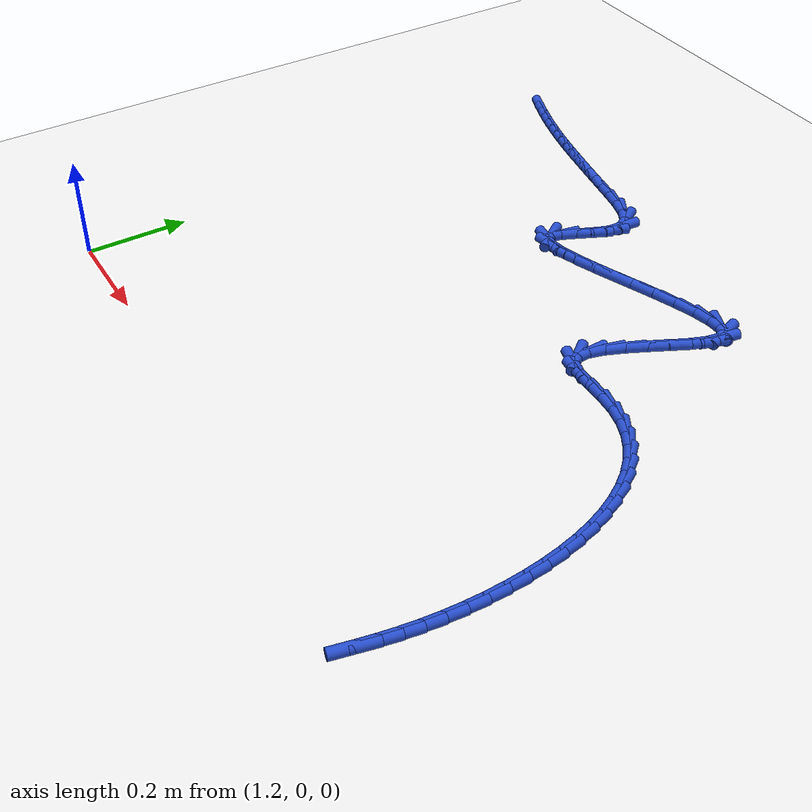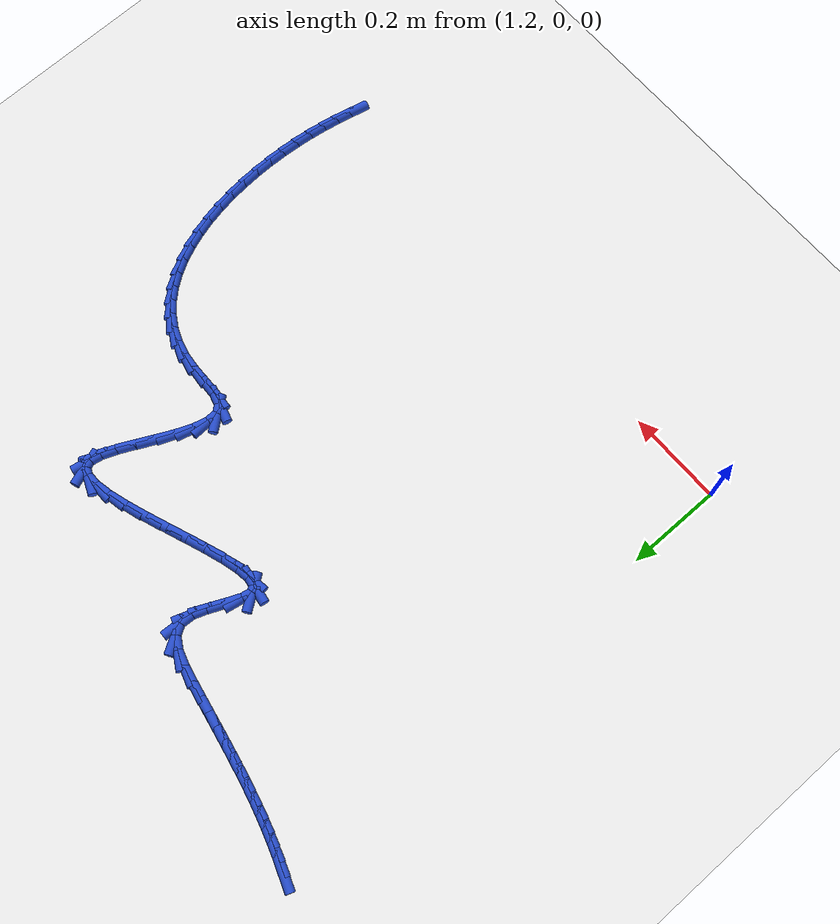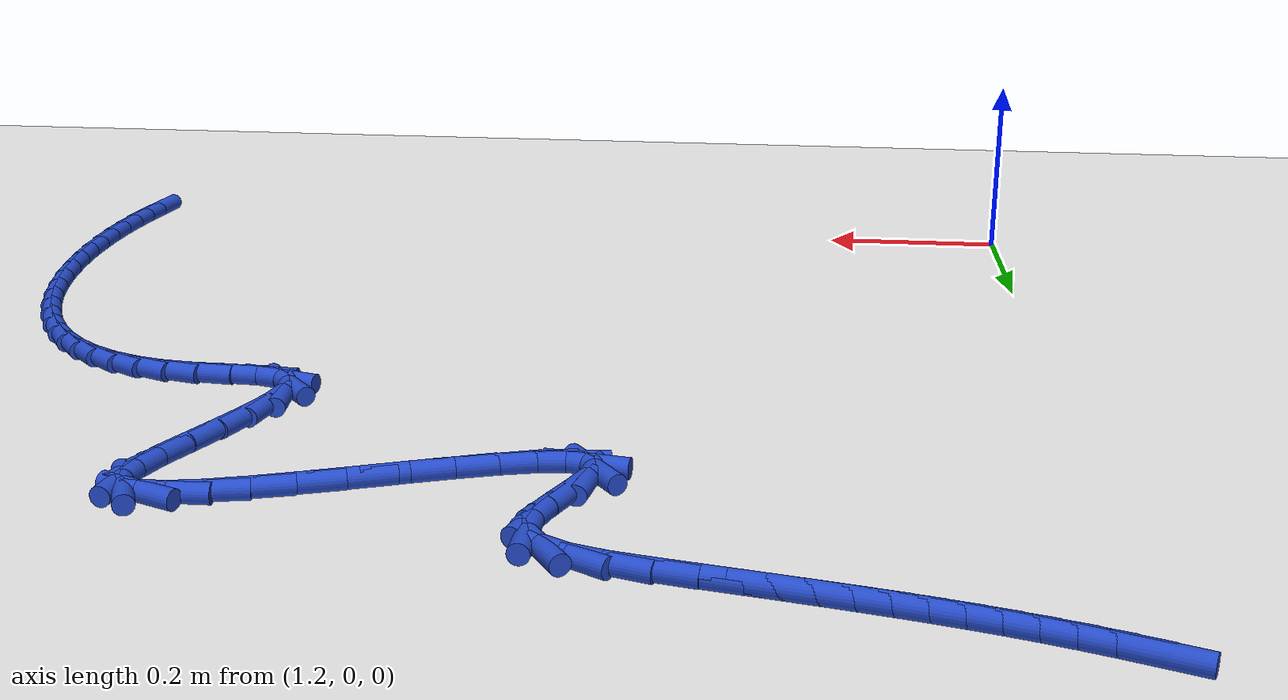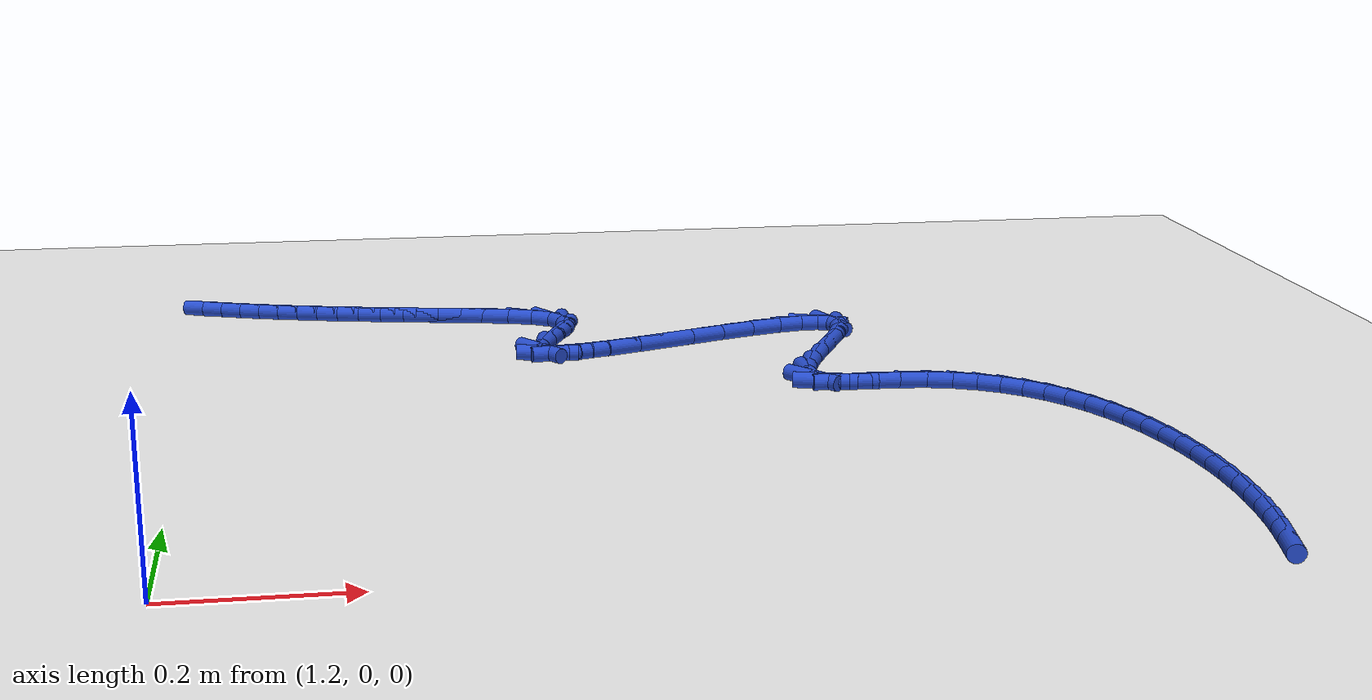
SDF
<sdf version="1.6">
 <world name="default">
  <model name="ground_plane">
   <static>1</static>
   <link name="link">
    <collision name="collision">
     <geometry><plane><normal>0 0 1</normal><size>100 100</size></plane></geometry>
     <surface><friction><ode><mu>100</mu><mu2>50</mu2></ode></friction></surface>
    </collision>
    <visual name="visual">
     <cast_shadows>0</cast_shadows>
     <geometry><plane><normal>0 0 1</normal><size>100 100</size></plane></geometry>
     <material>
      <script><uri>file://media/materials/scripts/gazebo.material</uri><name>Gazebo/WhiteGlow</name></script>
     </material>
    </visual>
   </link>
  </model>
  <model name="line">
   <link name="link_67">
    <pose>1.2075813204816834 1.0798621395228352 0.01 0 1.57 -0.36349178252804787</pose>
    <collision name="collision">
     <geometry><cylinder><radius>0.01</radius><length>0.08</length></cylinder></geometry>
    </collision>
    <visual name="visual">
     <material>
      <script><name>Gazebo/Blue</name><uri>file://media/materials/scripts/gazebo.material</uri></script>
     </material>
     <geometry><cylinder><radius>0.01</radius><length>0.08</length></cylinder></geometry>
    </visual>
   </link>
   <link name="link_68">
    <pose>1.2340818475749418 1.0697814818687765 0.01 0 1.57 -0.3384712861107182</pose>
    <collision name="collision">
     <geometry><cylinder><radius>0.01</radius><length>0.08</length></cylinder></geometry>
    </collision>
    <visual name="visual">
     <material>
      <script><name>Gazebo/Blue</name><uri>file://media/materials/scripts/gazebo.material</uri></script>
     </material>
     <geometry><cylinder><radius>0.01</radius><length>0.08</length></cylinder></geometry>
    </visual>
   </link>
   <link name="link_69">
    <pose>1.2601697648004149 1.0605980705155205 0.01 0 1.57 -0.3140016879058001</pose>
    <collision name="collision">
     <geometry><cylinder><radius>0.01</radius><length>0.08</length></cylinder></geometry>
    </collision>
    <visual name="visual">
     <material>
      <script><name>Gazebo/Blue</name><uri>file://media/materials/scripts/gazebo.material</uri></script>
     </material>
     <geometry><cylinder><radius>0.01</radius><length>0.08</length></cylinder></geometry>
    </visual>
   </link>
   <link name="link_70">
    <pose>1.2860438672985293 1.0521955723748042 0.01 0 1.57 -0.29075393672331684</pose>
    <collision name="collision">
     <geometry><cylinder><radius>0.01</radius><length>0.08</length></cylinder></geometry>
    </collision>
    <visual name="visual">
     <material>
      <script><name>Gazebo/Blue</name><uri>file://media/materials/scripts/gazebo.material</uri></script>
     </material>
     <geometry><cylinder><radius>0.01</radius><length>0.08</length></cylinder></geometry>
    </visual>
   </link>
   <link name="link_71">
    <pose>1.3119029502097113 1.0444576543583655 0.01 0 1.57 -0.26936138847672325</pose>
    <collision name="collision">
     <geometry><cylinder><radius>0.01</radius><length>0.08</length></cylinder></geometry>
    </collision>
    <visual name="visual">
     <material>
      <script><name>Gazebo/Blue</name><uri>file://media/materials/scripts/gazebo.material</uri></script>
     </material>
     <geometry><cylinder><radius>0.01</radius><length>0.08</length></cylinder></geometry>
    </visual>
   </link>
   <link name="link_72">
    <pose>1.3379458086743883 1.037267983377942 0.01 0 1.57 -0.25036365292439866</pose>
    <collision name="collision">
     <geometry><cylinder><radius>0.01</radius><length>0.08</length></cylinder></geometry>
    </collision>
    <visual name="visual">
     <material>
      <script><name>Gazebo/Blue</name><uri>file://media/materials/scripts/gazebo.material</uri></script>
     </material>
     <geometry><cylinder><radius>0.01</radius><length>0.08</length></cylinder></geometry>
    </visual>
   </link>
   <link name="link_73">
    <pose>1.3643712378329862 1.0305102263452706 0.01 0 1.57 -0.23416317445444537</pose>
    <collision name="collision">
     <geometry><cylinder><radius>0.01</radius><length>0.08</length></cylinder></geometry>
    </collision>
    <visual name="visual">
     <material>
      <script><name>Gazebo/Blue</name><uri>file://media/materials/scripts/gazebo.material</uri></script>
     </material>
     <geometry><cylinder><radius>0.01</radius><length>0.08</length></cylinder></geometry>
    </visual>
   </link>
   <link name="link_74">
    <pose>1.3913780328259313 1.0240680501720896 0.01 0 1.57 -0.22100145210969668</pose>
    <collision name="collision">
     <geometry><cylinder><radius>0.01</radius><length>0.08</length></cylinder></geometry>
    </collision>
    <visual name="visual">
     <material>
      <script><name>Gazebo/Blue</name><uri>file://media/materials/scripts/gazebo.material</uri></script>
     </material>
     <geometry><cylinder><radius>0.01</radius><length>0.08</length></cylinder></geometry>
    </visual>
   </link>
   <link name="link_75">
    <pose>1.4191649887936504 1.017825121770136 0.01 0 1.57 -0.21095671451756762</pose>
    <collision name="collision">
     <geometry><cylinder><radius>0.01</radius><length>0.08</length></cylinder></geometry>
    </collision>
    <visual name="visual">
     <material>
      <script><name>Gazebo/Blue</name><uri>file://media/materials/scripts/gazebo.material</uri></script>
     </material>
     <geometry><cylinder><radius>0.01</radius><length>0.08</length></cylinder></geometry>
    </visual>
   </link>
   <link name="link_76">
    <pose>1.4479309008765697 1.0116651080511476 0.01 0 1.57 -0.20396005924692726</pose>
    <collision name="collision">
     <geometry><cylinder><radius>0.01</radius><length>0.08</length></cylinder></geometry>
    </collision>
    <visual name="visual">
     <material>
      <script><name>Gazebo/Blue</name><uri>file://media/materials/scripts/gazebo.material</uri></script>
     </material>
     <geometry><cylinder><radius>0.01</radius><length>0.08</length></cylinder></geometry>
    </visual>
   </link>
   <link name="link_77">
    <pose>1.477874564215116 1.005471675926862 0.01 0 1.57 -0.19982404456002997</pose>
    <collision name="collision">
     <geometry><cylinder><radius>0.01</radius><length>0.08</length></cylinder></geometry>
    </collision>
    <visual name="visual">
     <material>
      <script><name>Gazebo/Blue</name><uri>file://media/materials/scripts/gazebo.material</uri></script>
     </material>
     <geometry><cylinder><radius>0.01</radius><length>0.08</length></cylinder></geometry>
    </visual>
   </link>
   <link name="link_78">
    <pose>1.5091947739497167 0.9991284923090165 0.01 0 1.57 -0.1982769223530124</pose>
    <collision name="collision">
     <geometry><cylinder><radius>0.01</radius><length>0.08</length></cylinder></geometry>
    </collision>
    <visual name="visual">
     <material>
      <script><name>Gazebo/Blue</name><uri>file://media/materials/scripts/gazebo.material</uri></script>
     </material>
     <geometry><cylinder><radius>0.01</radius><length>0.08</length></cylinder></geometry>
    </visual>
   </link>
   <link name="link_79">
    <pose>1.5420903252207965 0.9925192241093486 0.01 0 1.57 -0.19904461592035877</pose>
    <collision name="collision">
     <geometry><cylinder><radius>0.01</radius><length>0.08</length></cylinder></geometry>
    </collision>
    <visual name="visual">
     <material>
      <script><name>Gazebo/Blue</name><uri>file://media/materials/scripts/gazebo.material</uri></script>
     </material>
     <geometry><cylinder><radius>0.01</radius><length>0.08</length></cylinder></geometry>
    </visual>
   </link>
   <link name="link_80">
    <pose>1.5767569604038825 0.9855264234895668 0.01 0 1.57 -0.2200409473014814</pose>
    <collision name="collision">
     <geometry><cylinder><radius>0.01</radius><length>0.08</length></cylinder></geometry>
    </collision>
    <visual name="visual">
     <material>
      <script><name>Gazebo/Blue</name><uri>file://media/materials/scripts/gazebo.material</uri></script>
     </material>
     <geometry><cylinder><radius>0.01</radius><length>0.08</length></cylinder></geometry>
    </visual>
   </link>
   <link name="link_81">
    <pose>1.6122020385916365 0.9775986916380697 0.01 0 1.57 -0.31491738829142585</pose>
    <collision name="collision">
     <geometry><cylinder><radius>0.01</radius><length>0.08</length></cylinder></geometry>
    </collision>
    <visual name="visual">
     <material>
      <script><name>Gazebo/Blue</name><uri>file://media/materials/scripts/gazebo.material</uri></script>
     </material>
     <geometry><cylinder><radius>0.01</radius><length>0.08</length></cylinder></geometry>
    </visual>
   </link>
   <link name="link_82">
    <pose>1.644447501083149 0.9670944722360495 0.01 0 1.57 -0.5442021628274567</pose>
    <collision name="collision">
     <geometry><cylinder><radius>0.01</radius><length>0.08</length></cylinder></geometry>
    </collision>
    <visual name="visual">
     <material>
      <script><name>Gazebo/Blue</name><uri>file://media/materials/scripts/gazebo.material</uri></script>
     </material>
     <geometry><cylinder><radius>0.01</radius><length>0.08</length></cylinder></geometry>
    </visual>
   </link>
   <link name="link_83">
    <pose>1.6690539318658928 0.952203739366291 0.01 0 1.57 -1.034669283786752</pose>
    <collision name="collision">
     <geometry><cylinder><radius>0.01</radius><length>0.08</length></cylinder></geometry>
    </collision>
    <visual name="visual">
     <material>
      <script><name>Gazebo/Blue</name><uri>file://media/materials/scripts/gazebo.material</uri></script>
     </material>
     <geometry><cylinder><radius>0.01</radius><length>0.08</length></cylinder></geometry>
    </visual>
   </link>
   <link name="link_84">
    <pose>1.6815831264479086 0.931117110350725 0.01 0 1.57 1.5085522697786993</pose>
    <collision name="collision">
     <geometry><cylinder><radius>0.01</radius><length>0.08</length></cylinder></geometry>
    </collision>
    <visual name="visual">
     <material>
      <script><name>Gazebo/Blue</name><uri>file://media/materials/scripts/gazebo.material</uri></script>
     </material>
     <geometry><cylinder><radius>0.01</radius><length>0.08</length></cylinder></geometry>
    </visual>
   </link>
   <link name="link_85">
    <pose>1.6798443555793718 0.9032184666600894 0.01 0 1.57 1.2282274467618073</pose>
    <collision name="collision">
     <geometry><cylinder><radius>0.01</radius><length>0.08</length></cylinder></geometry>
    </collision>
    <visual name="visual">
     <material>
      <script><name>Gazebo/Blue</name><uri>file://media/materials/scripts/gazebo.material</uri></script>
     </material>
     <geometry><cylinder><radius>0.01</radius><length>0.08</length></cylinder></geometry>
    </visual>
   </link>
   <link name="link_86">
    <pose>1.6685535266009224 0.8715586675710336 0.01 0 1.57 1.1334893583099654</pose>
    <collision name="collision">
     <geometry><cylinder><radius>0.01</radius><length>0.08</length></cylinder></geometry>
    </collision>
    <visual name="visual">
     <material>
      <script><name>Gazebo/Blue</name><uri>file://media/materials/scripts/gazebo.material</uri></script>
     </material>
     <geometry><cylinder><radius>0.01</radius><length>0.08</length></cylinder></geometry>
    </visual>
   </link>
   <link name="link_87">
    <pose>1.6537488953925668 0.8398906540003813 0.01 0 1.57 1.1564715526220575</pose>
    <collision name="collision">
     <geometry><cylinder><radius>0.01</radius><length>0.08</length></cylinder></geometry>
    </collision>
    <visual name="visual">
     <material>
      <script><name>Gazebo/Blue</name><uri>file://media/materials/scripts/gazebo.material</uri></script>
     </material>
     <geometry><cylinder><radius>0.01</radius><length>0.08</length></cylinder></geometry>
    </visual>
   </link>
   <link name="link_88">
    <pose>1.6414687178343104 0.811967366864958 0.01 0 1.57 1.38871821715873</pose>
    <collision name="collision">
     <geometry><cylinder><radius>0.01</radius><length>0.08</length></cylinder></geometry>
    </collision>
    <visual name="visual">
     <material>
      <script><name>Gazebo/Blue</name><uri>file://media/materials/scripts/gazebo.material</uri></script>
     </material>
     <geometry><cylinder><radius>0.01</radius><length>0.08</length></cylinder></geometry>
    </visual>
   </link>
   <link name="link_89">
    <pose>1.6377019909258206 0.7915090633810091 0.01 0 1.57 -0.9598681090177598</pose>
    <collision name="collision">
     <geometry><cylinder><radius>0.01</radius><length>0.08</length></cylinder></geometry>
    </collision>
    <visual name="visual">
     <material>
      <script><name>Gazebo/Blue</name><uri>file://media/materials/scripts/gazebo.material</uri></script>
     </material>
     <geometry><cylinder><radius>0.01</radius><length>0.08</length></cylinder></geometry>
    </visual>
   </link>
   <link name="link_90">
    <pose>1.6455416175694253 0.7803144168458146 0.01 0 1.57 -0.1691462319148357</pose>
    <collision name="collision">
     <geometry><cylinder><radius>0.01</radius><length>0.08</length></cylinder></geometry>
    </collision>
    <visual name="visual">
     <material>
      <script><name>Gazebo/Blue</name><uri>file://media/materials/scripts/gazebo.material</uri></script>
     </material>
     <geometry><cylinder><radius>0.01</radius><length>0.08</length></cylinder></geometry>
    </visual>
   </link>
   <link name="link_91">
    <pose>1.6636254025529034 0.7772261037531665 0.01 0 1.57 0.13492208402925984</pose>
    <collision name="collision">
     <geometry><cylinder><radius>0.01</radius><length>0.08</length></cylinder></geometry>
    </collision>
    <visual name="visual">
     <material>
      <script><name>Gazebo/Blue</name><uri>file://media/materials/scripts/gazebo.material</uri></script>
     </material>
     <geometry><cylinder><radius>0.01</radius><length>0.08</length></cylinder></geometry>
    </visual>
   </link>
   <link name="link_92">
    <pose>1.6902118453217245 0.7808351281643805 0.01 0 1.57 0.26073320397918986</pose>
    <collision name="collision">
     <geometry><cylinder><radius>0.01</radius><length>0.08</length></cylinder></geometry>
    </collision>
    <visual name="visual">
     <material>
      <script><name>Gazebo/Blue</name><uri>file://media/materials/scripts/gazebo.material</uri></script>
     </material>
     <geometry><cylinder><radius>0.01</radius><length>0.08</length></cylinder></geometry>
    </visual>
   </link>
   <link name="link_93">
    <pose>1.7235594453213592 0.7897324941407727 0.01 0 1.57 0.3214602642262891</pose>
    <collision name="collision">
     <geometry><cylinder><radius>0.01</radius><length>0.08</length></cylinder></geometry>
    </collision>
    <visual name="visual">
     <material>
      <script><name>Gazebo/Blue</name><uri>file://media/materials/scripts/gazebo.material</uri></script>
     </material>
     <geometry><cylinder><radius>0.01</radius><length>0.08</length></cylinder></geometry>
    </visual>
   </link>
   <link name="link_94">
    <pose>1.7619267019972795 0.8025092057436596 0.01 0 1.57 0.35095949890989875</pose>
    <collision name="collision">
     <geometry><cylinder><radius>0.01</radius><length>0.08</length></cylinder></geometry>
    </collision>
    <visual name="visual">
     <material>
      <script><name>Gazebo/Blue</name><uri>file://media/materials/scripts/gazebo.material</uri></script>
     </material>
     <geometry><cylinder><radius>0.01</radius><length>0.08</length></cylinder></geometry>
    </visual>
   </link>
   <link name="link_95">
    <pose>1.8035721147949546 0.8177562670343568 0.01 0 1.57 0.36110625869679286</pose>
    <collision name="collision">
     <geometry><cylinder><radius>0.01</radius><length>0.08</length></cylinder></geometry>
    </collision>
    <visual name="visual">
     <material>
      <script><name>Gazebo/Blue</name><uri>file://media/materials/scripts/gazebo.material</uri></script>
     </material>
     <geometry><cylinder><radius>0.01</radius><length>0.08</length></cylinder></geometry>
    </visual>
   </link>
   <link name="link_96">
    <pose>1.8467541831598548 0.8340646820741799 0.01 0 1.57 0.3555909848033311</pose>
    <collision name="collision">
     <geometry><cylinder><radius>0.01</radius><length>0.08</length></cylinder></geometry>
    </collision>
    <visual name="visual">
     <material>
      <script><name>Gazebo/Blue</name><uri>file://media/materials/scripts/gazebo.material</uri></script>
     </material>
     <geometry><cylinder><radius>0.01</radius><length>0.08</length></cylinder></geometry>
    </visual>
   </link>
   <link name="link_97">
    <pose>1.8897314065374509 0.8500254549244455 0.01 0 1.57 0.3332690803337346</pose>
    <collision name="collision">
     <geometry><cylinder><radius>0.01</radius><length>0.08</length></cylinder></geometry>
    </collision>
    <visual name="visual">
     <material>
      <script><name>Gazebo/Blue</name><uri>file://media/materials/scripts/gazebo.material</uri></script>
     </material>
     <geometry><cylinder><radius>0.01</radius><length>0.08</length></cylinder></geometry>
    </visual>
   </link>
   <link name="link_98">
    <pose>1.9307622843732142 0.8642295896464692 0.01 0 1.57 0.2874127737884673</pose>
    <collision name="collision">
     <geometry><cylinder><radius>0.01</radius><length>0.08</length></cylinder></geometry>
    </collision>
    <visual name="visual">
     <material>
      <script><name>Gazebo/Blue</name><uri>file://media/materials/scripts/gazebo.material</uri></script>
     </material>
     <geometry><cylinder><radius>0.01</radius><length>0.08</length></cylinder></geometry>
    </visual>
   </link>
   <link name="link_99">
    <pose>1.968105316112615 0.8752680903015675 0.01 0 1.57 0.19983886372050583</pose>
    <collision name="collision">
     <geometry><cylinder><radius>0.01</radius><length>0.08</length></cylinder></geometry>
    </collision>
    <visual name="visual">
     <material>
      <script><name>Gazebo/Blue</name><uri>file://media/materials/scripts/gazebo.material</uri></script>
     </material>
     <geometry><cylinder><radius>0.01</radius><length>0.08</length></cylinder></geometry>
    </visual>
   </link>
   <link name="link_100">
    <pose>2.0000190012011236 0.8817319609510561 0.01 0 1.57 0.019407006347672295</pose>
    <collision name="collision">
     <geometry><cylinder><radius>0.01</radius><length>0.08</length></cylinder></geometry>
    </collision>
    <visual name="visual">
     <material>
      <script><name>Gazebo/Blue</name><uri>file://media/materials/scripts/gazebo.material</uri></script>
     </material>
     <geometry><cylinder><radius>0.01</radius><length>0.08</length></cylinder></geometry>
    </visual>
   </link>
   <link name="link_101">
    <pose>2.0247618390842104 0.882212205656251 0.01 0 1.57 -0.41169644026972385</pose>
    <collision name="collision">
     <geometry><cylinder><radius>0.01</radius><length>0.08</length></cylinder></geometry>
    </collision>
    <visual name="visual">
     <material>
      <script><name>Gazebo/Blue</name><uri>file://media/materials/scripts/gazebo.material</uri></script>
     </material>
     <geometry><cylinder><radius>0.01</radius><length>0.08</length></cylinder></geometry>
    </visual>
   </link>
   <link name="link_102">
    <pose>2.040592329207346 0.8752998284784683 0.01 0 1.57 -1.2419043116179147</pose>
    <collision name="collision">
     <geometry><cylinder><radius>0.01</radius><length>0.08</length></cylinder></geometry>
    </collision>
    <visual name="visual">
     <material>
      <script><name>Gazebo/Blue</name><uri>file://media/materials/scripts/gazebo.material</uri></script>
     </material>
     <geometry><cylinder><radius>0.01</radius><length>0.08</length></cylinder></geometry>
    </visual>
   </link>
   <link name="link_103">
    <pose>2.045915755738176 0.8597017514219313 0.01 0 1.57 1.3853832356556264</pose>
    <collision name="collision">
     <geometry><cylinder><radius>0.01</radius><length>0.08</length></cylinder></geometry>
    </collision>
    <visual name="visual">
     <material>
      <script><name>Gazebo/Blue</name><uri>file://media/materials/scripts/gazebo.material</uri></script>
     </material>
     <geometry><cylinder><radius>0.01</radius><length>0.08</length></cylinder></geometry>
    </visual>
   </link>
   <link name="link_104">
    <pose>2.041462822659471 0.835961312960991 0.01 0 1.57 1.199228471949957</pose>
    <collision name="collision">
     <geometry><cylinder><radius>0.01</radius><length>0.08</length></cylinder></geometry>
    </collision>
    <visual name="visual">
     <material>
      <script><name>Gazebo/Blue</name><uri>file://media/materials/scripts/gazebo.material</uri></script>
     </material>
     <geometry><cylinder><radius>0.01</radius><length>0.08</length></cylinder></geometry>
    </visual>
   </link>
   <link name="link_105">
    <pose>2.0298227531693365 0.8060895501227056 0.01 0 1.57 1.1259236814239564</pose>
    <collision name="collision">
     <geometry><cylinder><radius>0.01</radius><length>0.08</length></cylinder></geometry>
    </collision>
    <visual name="visual">
     <material>
      <script><name>Gazebo/Blue</name><uri>file://media/materials/scripts/gazebo.material</uri></script>
     </material>
     <geometry><cylinder><radius>0.01</radius><length>0.08</length></cylinder></geometry>
    </visual>
   </link>
   <link name="link_106">
    <pose>2.0136367022446717 0.7721385111843486 0.01 0 1.57 1.1048889342531996</pose>
    <collision name="collision">
     <geometry><cylinder><radius>0.01</radius><length>0.08</length></cylinder></geometry>
    </collision>
    <visual name="visual">
     <material>
      <script><name>Gazebo/Blue</name><uri>file://media/materials/scripts/gazebo.material</uri></script>
     </material>
     <geometry><cylinder><radius>0.01</radius><length>0.08</length></cylinder></geometry>
    </visual>
   </link>
   <link name="link_107">
    <pose>1.9955458248623743 0.7361602444231947 0.01 0 1.57 1.1210883087487669</pose>
    <collision name="collision">
     <geometry><cylinder><radius>0.01</radius><length>0.08</length></cylinder></geometry>
    </collision>
    <visual name="visual">
     <material>
      <script><name>Gazebo/Blue</name><uri>file://media/materials/scripts/gazebo.material</uri></script>
     </material>
     <geometry><cylinder><radius>0.01</radius><length>0.08</length></cylinder></geometry>
    </visual>
   </link>
   <link name="link_108">
    <pose>1.9781912759993452 0.7002067981165184 0.01 0 1.57 1.1794856478137319</pose>
    <collision name="collision">
     <geometry><cylinder><radius>0.01</radius><length>0.08</length></cylinder></geometry>
    </collision>
    <visual name="visual">
     <material>
      <script><name>Gazebo/Blue</name><uri>file://media/materials/scripts/gazebo.material</uri></script>
     </material>
     <geometry><cylinder><radius>0.01</radius><length>0.08</length></cylinder></geometry>
    </visual>
   </link>
   <link name="link_109">
    <pose>1.9642142106324816 0.6663302205415935 0.01 0 1.57 1.3093869856145985</pose>
    <collision name="collision">
     <geometry><cylinder><radius>0.01</radius><length>0.08</length></cylinder></geometry>
    </collision>
    <visual name="visual">
     <material>
      <script><name>Gazebo/Blue</name><uri>file://media/materials/scripts/gazebo.material</uri></script>
     </material>
     <geometry><cylinder><radius>0.01</radius><length>0.08</length></cylinder></geometry>
    </visual>
   </link>
   <link name="link_110">
    <pose>1.9562557837386827 0.6365825599756952 0.01 0 1.57 -1.5410441876795093</pose>
    <collision name="collision">
     <geometry><cylinder><radius>0.01</radius><length>0.08</length></cylinder></geometry>
    </collision>
    <visual name="visual">
     <material>
      <script><name>Gazebo/Blue</name><uri>file://media/materials/scripts/gazebo.material</uri></script>
     </material>
     <geometry><cylinder><radius>0.01</radius><length>0.08</length></cylinder></geometry>
    </visual>
   </link>
   <link name="link_111">
    <pose>1.9569571502948477 0.613015864696098 0.01 0 1.57 -0.9076381895655725</pose>
    <collision name="collision">
     <geometry><cylinder><radius>0.01</radius><length>0.08</length></cylinder></geometry>
    </collision>
    <visual name="visual">
     <material>
      <script><name>Gazebo/Blue</name><uri>file://media/materials/scripts/gazebo.material</uri></script>
     </material>
     <geometry><cylinder><radius>0.01</radius><length>0.08</length></cylinder></geometry>
    </visual>
   </link>
   <link name="link_112">
    <pose>1.9689450009469518 0.5976699970574995 0.01 0 1.57 -0.282527602241062</pose>
    <collision name="collision">
     <geometry><cylinder><radius>0.01</radius><length>0.08</length></cylinder></geometry>
    </collision>
    <visual name="visual">
     <material>
      <script><name>Gazebo/Blue</name><uri>file://media/materials/scripts/gazebo.material</uri></script>
     </material>
     <geometry><cylinder><radius>0.01</radius><length>0.08</length></cylinder></geometry>
    </visual>
   </link>
   <link name="link_113">
    <pose>1.9926975773494628 0.5907747921683525 0.01 0 1.57 -0.06091799804714003</pose>
    <collision name="collision">
     <geometry><cylinder><radius>0.01</radius><length>0.08</length></cylinder></geometry>
    </collision>
    <visual name="visual">
     <material>
      <script><name>Gazebo/Blue</name><uri>file://media/materials/scripts/gazebo.material</uri></script>
     </material>
     <geometry><cylinder><radius>0.01</radius><length>0.08</length></cylinder></geometry>
    </visual>
   </link>
   <link name="link_114">
    <pose>2.0242870349709086 0.5888480416688344 0.01 0 1.57 -0.025619167527136513</pose>
    <collision name="collision">
     <geometry><cylinder><radius>0.01</radius><length>0.08</length></cylinder></geometry>
    </collision>
    <visual name="visual">
     <material>
      <script><name>Gazebo/Blue</name><uri>file://media/materials/scripts/gazebo.material</uri></script>
     </material>
     <geometry><cylinder><radius>0.01</radius><length>0.08</length></cylinder></geometry>
    </visual>
   </link>
   <link name="link_115">
    <pose>2.0592451153234217 0.587952248761187 0.01 0 1.57 -0.10722562103384078</pose>
    <collision name="collision">
     <geometry><cylinder><radius>0.01</radius><length>0.08</length></cylinder></geometry>
    </collision>
    <visual name="visual">
     <material>
      <script><name>Gazebo/Blue</name><uri>file://media/materials/scripts/gazebo.material</uri></script>
     </material>
     <geometry><cylinder><radius>0.01</radius><length>0.08</length></cylinder></geometry>
    </visual>
   </link>
   <link name="link_116">
    <pose>2.09325546248093 0.5842914275054385 0.01 0 1.57 -0.2503568236305328</pose>
    <collision name="collision">
     <geometry><cylinder><radius>0.01</radius><length>0.08</length></cylinder></geometry>
    </collision>
    <visual name="visual">
     <material>
      <script><name>Gazebo/Blue</name><uri>file://media/materials/scripts/gazebo.material</uri></script>
     </material>
     <geometry><cylinder><radius>0.01</radius><length>0.08</length></cylinder></geometry>
    </visual>
   </link>
   <link name="link_117">
    <pose>2.1244196059257736 0.5763220690372763 0.01 0 1.57 -0.4007827699854262</pose>
    <collision name="collision">
     <geometry><cylinder><radius>0.01</radius><length>0.08</length></cylinder></geometry>
    </collision>
    <visual name="visual">
     <material>
      <script><name>Gazebo/Blue</name><uri>file://media/materials/scripts/gazebo.material</uri></script>
     </material>
     <geometry><cylinder><radius>0.01</radius><length>0.08</length></cylinder></geometry>
    </visual>
   </link>
   <link name="link_118">
    <pose>2.1527774176163197 0.5643064043247359 0.01 0 1.57 -0.5507174822655772</pose>
    <collision name="collision">
     <geometry><cylinder><radius>0.01</radius><length>0.08</length></cylinder></geometry>
    </collision>
    <visual name="visual">
     <material>
      <script><name>Gazebo/Blue</name><uri>file://media/materials/scripts/gazebo.material</uri></script>
     </material>
     <geometry><cylinder><radius>0.01</radius><length>0.08</length></cylinder></geometry>
    </visual>
   </link>
   <link name="link_119">
    <pose>2.1784232918802373 0.548557456812011 0.01 0 1.57 -0.6941980798483157</pose>
    <collision name="collision">
     <geometry><cylinder><radius>0.01</radius><length>0.08</length></cylinder></geometry>
    </collision>
    <visual name="visual">
     <material>
      <script><name>Gazebo/Blue</name><uri>file://media/materials/scripts/gazebo.material</uri></script>
     </material>
     <geometry><cylinder><radius>0.01</radius><length>0.08</length></cylinder></geometry>
    </visual>
   </link>
   <link name="link_120">
    <pose>2.2014516230451933 0.5293882499432951 0.01 0 1.57 -0.82677689427212</pose>
    <collision name="collision">
     <geometry><cylinder><radius>0.01</radius><length>0.08</length></cylinder></geometry>
    </collision>
    <visual name="visual">
     <material>
      <script><name>Gazebo/Blue</name><uri>file://media/materials/scripts/gazebo.material</uri></script>
     </material>
     <geometry><cylinder><radius>0.01</radius><length>0.08</length></cylinder></geometry>
    </visual>
   </link>
   <link name="link_121">
    <pose>2.2219568054388583 0.507111807162783 0.01 0 1.57 -0.9461022561206545</pose>
    <collision name="collision">
     <geometry><cylinder><radius>0.01</radius><length>0.08</length></cylinder></geometry>
    </collision>
    <visual name="visual">
     <material>
      <script><name>Gazebo/Blue</name><uri>file://media/materials/scripts/gazebo.material</uri></script>
     </material>
     <geometry><cylinder><radius>0.01</radius><length>0.08</length></cylinder></geometry>
    </visual>
   </link>
   <link name="link_122">
    <pose>2.2400332333889006 0.4820411519146677 0.01 0 1.57 -1.0517006452103101</pose>
    <collision name="collision">
     <geometry><cylinder><radius>0.01</radius><length>0.08</length></cylinder></geometry>
    </collision>
    <visual name="visual">
     <material>
      <script><name>Gazebo/Blue</name><uri>file://media/materials/scripts/gazebo.material</uri></script>
     </material>
     <geometry><cylinder><radius>0.01</radius><length>0.08</length></cylinder></geometry>
    </visual>
   </link>
   <link name="link_123">
    <pose>2.2557753012229873 0.45448930764314416 0.01 0 1.57 -1.1443638660648083</pose>
    <collision name="collision">
     <geometry><cylinder><radius>0.01</radius><length>0.08</length></cylinder></geometry>
    </collision>
    <visual name="visual">
     <material>
      <script><name>Gazebo/Blue</name><uri>file://media/materials/scripts/gazebo.material</uri></script>
     </material>
     <geometry><cylinder><radius>0.01</radius><length>0.08</length></cylinder></geometry>
    </visual>
   </link>
   <link name="link_124">
    <pose>2.269277403268788 0.42476929779240585 0.01 0 1.57 -1.2255358414365916</pose>
    <collision name="collision">
     <geometry><cylinder><radius>0.01</radius><length>0.08</length></cylinder></geometry>
    </collision>
    <visual name="visual">
     <material>
      <script><name>Gazebo/Blue</name><uri>file://media/materials/scripts/gazebo.material</uri></script>
     </material>
     <geometry><cylinder><radius>0.01</radius><length>0.08</length></cylinder></geometry>
    </visual>
   </link>
   <link name="link_125">
    <pose>2.2806339338539714 0.393194145806647 0.01 0 1.57 -1.2968773456381373</pose>
    <collision name="collision">
     <geometry><cylinder><radius>0.01</radius><length>0.08</length></cylinder></geometry>
    </collision>
    <visual name="visual">
     <material>
      <script><name>Gazebo/Blue</name><uri>file://media/materials/scripts/gazebo.material</uri></script>
     </material>
     <geometry><cylinder><radius>0.01</radius><length>0.08</length></cylinder></geometry>
    </visual>
   </link>
   <link name="link_126">
    <pose>2.2899392873062046 0.360076875130061 0.01 0 1.57 -1.36001937921772</pose>
    <collision name="collision">
     <geometry><cylinder><radius>0.01</radius><length>0.08</length></cylinder></geometry>
    </collision>
    <visual name="visual">
     <material>
      <script><name>Gazebo/Blue</name><uri>file://media/materials/scripts/gazebo.material</uri></script>
     </material>
     <geometry><cylinder><radius>0.01</radius><length>0.08</length></cylinder></geometry>
    </visual>
   </link>
   <link name="link_127">
    <pose>2.297287857953159 0.32573050920684277 0.01 0 1.57 -1.4164522412377092</pose>
    <collision name="collision">
     <geometry><cylinder><radius>0.01</radius><length>0.08</length></cylinder></geometry>
    </collision>
    <visual name="visual">
     <material>
      <script><name>Gazebo/Blue</name><uri>file://media/materials/scripts/gazebo.material</uri></script>
     </material>
     <geometry><cylinder><radius>0.01</radius><length>0.08</length></cylinder></geometry>
    </visual>
   </link>
   <link name="link_128">
    <pose>2.3027740401225003 0.29046807148118586 0.01 0 1.57 -1.4674949860459994</pose>
    <collision name="collision">
     <geometry><cylinder><radius>0.01</radius><length>0.08</length></cylinder></geometry>
    </collision>
    <visual name="visual">
     <material>
      <script><name>Gazebo/Blue</name><uri>file://media/materials/scripts/gazebo.material</uri></script>
     </material>
     <geometry><cylinder><radius>0.01</radius><length>0.08</length></cylinder></geometry>
    </visual>
   </link>
   <link name="link_129">
    <pose>2.3064922281418982 0.2546025853972842 0.01 0 1.57 -1.5143066558950309</pose>
    <collision name="collision">
     <geometry><cylinder><radius>0.01</radius><length>0.08</length></cylinder></geometry>
    </collision>
    <visual name="visual">
     <material>
      <script><name>Gazebo/Blue</name><uri>file://media/materials/scripts/gazebo.material</uri></script>
     </material>
     <geometry><cylinder><radius>0.01</radius><length>0.08</length></cylinder></geometry>
    </visual>
   </link>
   <link name="link_130">
    <pose>2.3085368163390214 0.2184470743993318 0.01 0 1.57 -1.5579171512560586</pose>
    <collision name="collision">
     <geometry><cylinder><radius>0.01</radius><length>0.08</length></cylinder></geometry>
    </collision>
    <visual name="visual">
     <material>
      <script><name>Gazebo/Blue</name><uri>file://media/materials/scripts/gazebo.material</uri></script>
     </material>
     <geometry><cylinder><radius>0.01</radius><length>0.08</length></cylinder></geometry>
    </visual>
   </link>
   <link name="link_131">
    <pose>2.3090021990415384 0.18231456193152212 0.01 0 1.57 1.5423255747338724</pose>
    <collision name="collision">
     <geometry><cylinder><radius>0.01</radius><length>0.08</length></cylinder></geometry>
    </collision>
    <visual name="visual">
     <material>
      <script><name>Gazebo/Blue</name><uri>file://media/materials/scripts/gazebo.material</uri></script>
     </material>
     <geometry><cylinder><radius>0.01</radius><length>0.08</length></cylinder></geometry>
    </visual>
   </link>
   <link name="link_132">
    <pose>2.307982770577118 0.14651807143805032 0.01 0 1.57 1.5023395817383791</pose>
    <collision name="collision">
     <geometry><cylinder><radius>0.01</radius><length>0.08</length></cylinder></geometry>
    </collision>
    <visual name="visual">
     <material>
      <script><name>Gazebo/Blue</name><uri>file://media/materials/scripts/gazebo.material</uri></script>
     </material>
     <geometry><cylinder><radius>0.01</radius><length>0.08</length></cylinder></geometry>
    </visual>
   </link>
   <link name="link_133">
    <pose>2.305572925273428 0.11137062636310961 0.01 0 1.57 1.4628129422678027</pose>
    <collision name="collision">
     <geometry><cylinder><radius>0.01</radius><length>0.08</length></cylinder></geometry>
    </collision>
    <visual name="visual">
     <material>
      <script><name>Gazebo/Blue</name><uri>file://media/materials/scripts/gazebo.material</uri></script>
     </material>
     <geometry><cylinder><radius>0.01</radius><length>0.08</length></cylinder></geometry>
    </visual>
   </link>
   <link name="link_134">
    <pose>2.301867057458137 0.07718525015089416 0.01 0 1.57 1.4231265513503113</pose>
    <collision name="collision">
     <geometry><cylinder><radius>0.01</radius><length>0.08</length></cylinder></geometry>
    </collision>
    <visual name="visual">
     <material>
      <script><name>Gazebo/Blue</name><uri>file://media/materials/scripts/gazebo.material</uri></script>
     </material>
     <geometry><cylinder><radius>0.01</radius><length>0.08</length></cylinder></geometry>
    </visual>
   </link>
   <link name="link_135">
    <pose>2.296967991900123 0.044250931666888496 0.01 0 1.57 1.387064990781919</pose>
    <collision name="collision">
     <geometry><cylinder><radius>0.01</radius><length>0.08</length></cylinder></geometry>
    </collision>
    <visual name="visual">
     <material>
      <script><name>Gazebo/Blue</name><uri>file://media/materials/scripts/gazebo.material</uri></script>
     </material>
     <geometry><cylinder><radius>0.01</radius><length>0.08</length></cylinder></geometry>
    </visual>
   </link>
   <link name="link_136">
    <pose>2.2910802238120125 0.01256680468805496 0.01 0 1.57 1.35840182651451</pose>
    <collision name="collision">
     <geometry><cylinder><radius>0.01</radius><length>0.08</length></cylinder></geometry>
    </collision>
    <visual name="visual">
     <material>
      <script><name>Gazebo/Blue</name><uri>file://media/materials/scripts/gazebo.material</uri></script>
     </material>
     <geometry><cylinder><radius>0.01</radius><length>0.08</length></cylinder></geometry>
    </visual>
   </link>
   <link name="link_137">
    <pose>2.2844756263154906 -0.018060086558702886 0.01 0 1.57 1.3382872894832254</pose>
    <collision name="collision">
     <geometry><cylinder><radius>0.01</radius><length>0.08</length></cylinder></geometry>
    </collision>
    <visual name="visual">
     <material>
      <script><name>Gazebo/Blue</name><uri>file://media/materials/scripts/gazebo.material</uri></script>
     </material>
     <geometry><cylinder><radius>0.01</radius><length>0.08</length></cylinder></geometry>
    </visual>
   </link>
  </model>
 </world>
</sdf>
